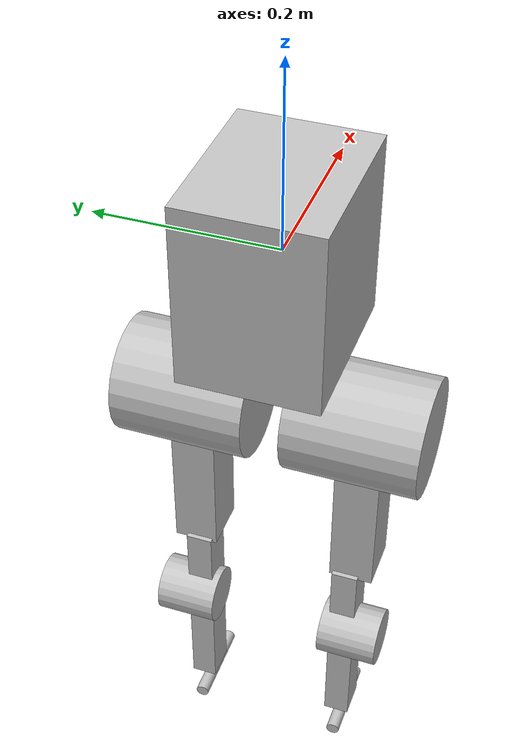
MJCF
<mujoco model="pdd">
  <compiler angle="radian"/>
  <worldbody>
    <geom size="0.092 0.075 0.1" pos="-0.01 0 -0.006" type="box" rgba="0.75294 0.75294 0.75294 1"/>
    <body name="leg_l1_link" pos="-0.002 0.09 -0.1035">
      <inertial pos="0.002501 5.3e-05 -0.002722" quat="0.472677 0.527005 0.495251 0.503556" mass="0.453728" diaginertia="0.000163063 0.000147076 8.18618e-05"/>
      <joint name="leg_l1_joint" pos="0 0 0" axis="1 0 0" range="-0.2 0.5" actuatorfrcrange="-36 36"/>
      <body name="leg_l2_link" pos="0 -0.00016972 -0.0325">
        <inertial pos="-0.000273 0.043826 -0.058639" quat="0.7074 0.0648812 -0.0612384 0.70116" mass="0.925998" diaginertia="0.00166463 0.00123897 0.0010754"/>
        <joint name="leg_l2_joint" pos="0 0 0" axis="0 0 1" range="-0.5 1" actuatorfrcrange="-36 36"/>
        <geom size="0.065 0.073" pos="0 0.0046 -0.057" quat="0.707388 0.706825 0 0" type="cylinder" rgba="0.75294 0.75294 0.75294 1"/>
        <body name="leg_l3_link" pos="0 -0.01433 -0.0575">
          <inertial pos="0.003163 -0.022552 -0.027258" quat="0.678041 0.0230005 -0.0875592 0.729428" mass="1.39047" diaginertia="0.00722081 0.00694653 0.00181065"/>
          <joint name="leg_l3_joint" pos="0 0 0" axis="0 1 0" range="-0.8 1.2" actuatorfrcrange="-94 94"/>
          <geom size="0.03 0.125 0.025" pos="0.015 0.02 -0.1" quat="0.707388 0.706825 0 0" type="box" rgba="0.75294 0.75294 0.75294 1"/>
          <body name="leg_l4_link" pos="0 0.0145 -0.24">
            <inertial pos="-0.012044 0.006361 -0.093905" quat="0.696191 0.0388817 0.0714045 0.713237" mass="0.649518" diaginertia="0.00246473 0.00221871 0.000430556"/>
            <joint name="leg_l4_joint" pos="0 0 0" axis="0 1 0" range="0 1.5" actuatorfrcrange="-94 94"/>
            <geom size="0.0205 0.125 0.015" pos="0 0 -0.105" quat="0.707388 0.706825 0 0" type="box" rgba="0.75294 0.75294 0.75294 1"/>
            <geom size="0.034 0.035" pos="-0.011 0.012 -0.079" quat="0.707388 0.706825 0 0" type="cylinder" rgba="0.75294 0.75294 0.75294 1"/>
            <body name="leg_l5_link" pos="0.005 0 -0.23995">
              <inertial pos="0.012435 0 -0.015511" quat="0.5 0.5 0.5 0.5" mass="0.090265" diaginertia="0.00024 0.00024 1.5e-05"/>
              <joint name="leg_l5_joint" pos="0 0 0" axis="0 1 0" range="-1.1 1.1" actuatorfrcrange="-36 36"/>
              <geom size="0.008 0.05" pos="0.01503 0 -0.02" quat="0.707388 0 0.706825 0" type="cylinder" rgba="0.75294 0.75294 0.75294 1"/>
            </body>
          </body>
        </body>
      </body>
    </body>
    <body name="leg_r1_link" pos="-0.002 -0.09 -0.1035">
      <inertial pos="0.002501 -5.3e-05 -0.002722" quat="0.503556 0.495251 0.527005 0.472677" mass="0.453728" diaginertia="0.000163063 0.000147076 8.18618e-05"/>
      <joint name="leg_r1_joint" pos="0 0 0" axis="1 0 0" range="-0.5 0.2" actuatorfrcrange="-36 36"/>
      <body name="leg_r2_link" pos="0 0.00016972 -0.0325">
        <inertial pos="9e-05 -0.043826 -0.058639" quat="0.7074 -0.0648812 0.0612384 0.70116" mass="0.925998" diaginertia="0.00166463 0.00123897 0.0010754"/>
        <joint name="leg_r2_joint" pos="0 0 0" axis="0 0 1" range="-1 0.5" actuatorfrcrange="-36 36"/>
        <geom size="0.065 0.073" pos="0 -0.0033 -0.057" quat="0.707388 0.706825 0 0" type="cylinder" rgba="0.75294 0.75294 0.75294 1"/>
        <body name="leg_r3_link" pos="0 0.01633 -0.0575">
          <inertial pos="0.003311 0.02265 -0.027271" quat="0.734236 -0.0877978 0.023126 0.672795" mass="1.38862" diaginertia="0.00722344 0.00694292 0.00180965"/>
          <joint name="leg_r3_joint" pos="0 0 0" axis="0 1 0" range="-0.8 1.2" actuatorfrcrange="-94 94"/>
          <geom size="0.03 0.125 0.025" pos="0.015 -0.02 -0.1" quat="0.707388 0.706825 0 0" type="box" rgba="0.75294 0.75294 0.75294 1"/>
          <body name="leg_r4_link" pos="0 -0.0145 -0.24">
            <inertial pos="-0.007886 -0.007123 -0.088091" quat="0.656271 0.072878 0.0339591 0.750229" mass="0.61472" diaginertia="0.0024688 0.00221407 0.000431126"/>
            <joint name="leg_r4_joint" pos="0 0 0" axis="0 1 0" range="0 1.5" actuatorfrcrange="-94 94"/>
            <geom size="0.0205 0.125 0.015" pos="0 0 -0.105" quat="0.707388 0.706825 0 0" type="box" rgba="0.75294 0.75294 0.75294 1"/>
            <geom size="0.034 0.035" pos="-0.011 -0.012 -0.079" quat="0.707388 0.706825 0 0" type="cylinder" rgba="0.75294 0.75294 0.75294 1"/>
            <body name="leg_r5_link" pos="0.005 0 -0.23995">
              <inertial pos="0.012435 0 -0.015511" quat="0.5 0.5 0.5 0.5" mass="0.090265" diaginertia="0.00024 0.00024 1.5e-05"/>
              <joint name="leg_r5_joint" pos="0 0 0" axis="0 1 0" range="-1.1 1.1" actuatorfrcrange="-36 36"/>
              <geom size="0.008 0.05" pos="0.01503 0 -0.02" quat="0.707388 0 0.706825 0" type="cylinder" rgba="0.75294 0.75294 0.75294 1"/>
            </body>
          </body>
        </body>
      </body>
    </body>
  </worldbody>
</mujoco>
